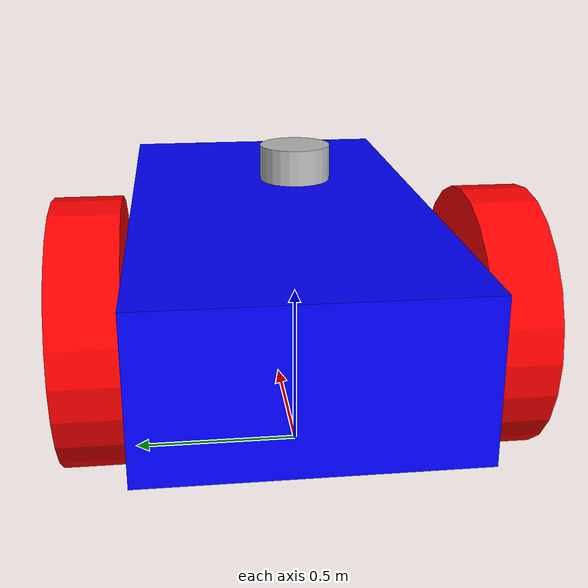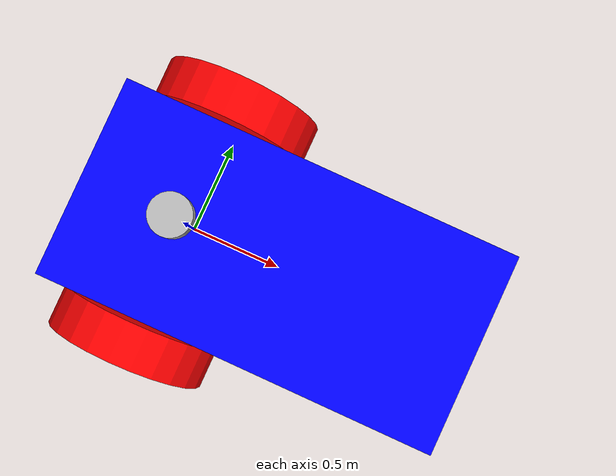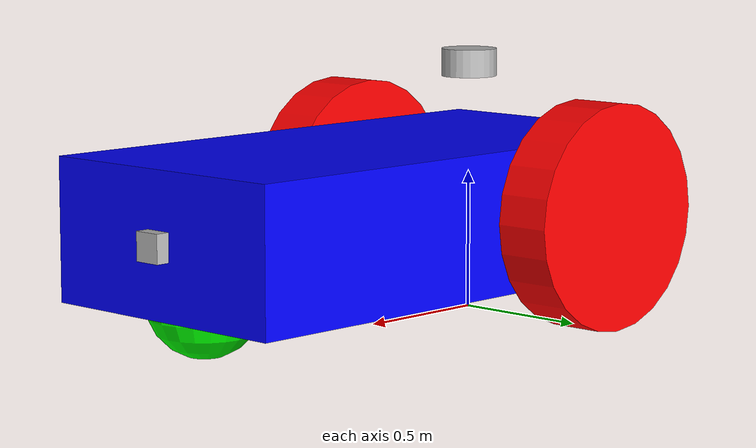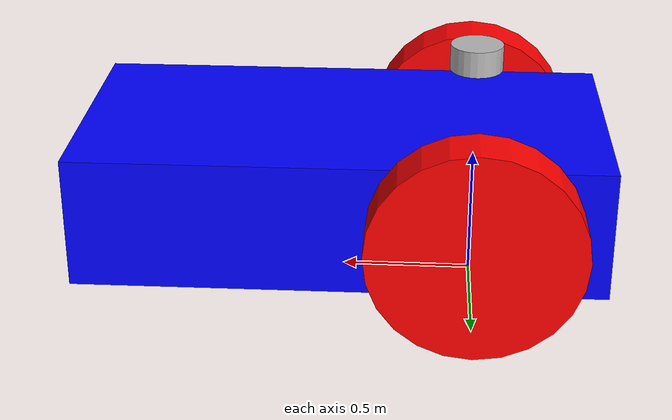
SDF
<sdf version="1.8">
    <model name='vehicle_blue'>
        <canonical_link>chassis</canonical_link>
        <plugin
            filename="gz-sim-pose-publisher-system"
            name="gz::sim::systems::PosePublisher">
            <use_pose_vector_msg>true</use_pose_vector_msg>
            <publish_nested_model_pose>true</publish_nested_model_pose>
        </plugin>

        <link name='chassis'>
            <pose relative_to='__model__'>0.5 0 0.4 0 0 0</pose>
            <inertial> <!--inertial properties of the link mass, inertia matix-->
                <mass>10.14395</mass>
                <inertia>
                    <ixx>0.126164</ixx>
                    <ixy>0</ixy>
                    <ixz>0</ixz>
                    <iyy>0.416519</iyy>
                    <iyz>0</iyz>
                    <izz>0.481014</izz>
                </inertia>
            </inertial>
            <visual name='visual'>
                <geometry>
                    <box>
                        <size>2.0 1.0 0.5</size> <!--question: this size is in meter-->
                    </box>
                </geometry>
                <!--let's add color to our link-->
                <material>
                    <ambient>0.0 0.0 1.0 1</ambient>
                    <diffuse>0.0 0.0 1.0 1</diffuse>
                    <specular>0.0 0.0 1.0 1</specular>
                </material>
            </visual>
            <collision name='collision'> <!--todo: describe why we need the collision-->
                <geometry>
                    <box>
                        <size>2.0 1.0 0.5</size>
                    </box>
                </geometry>
            </collision>
        </link>

        <!-- Attach a camera to the nose of the bot -->
        <link name="camera">
            <pose relative_to="chassis">1.0 0 0 0 0 0</pose>
            <inertial>
              <mass>0.1</mass>
              <inertia>
                <ixx>0.000166667</ixx>
                <iyy>0.000166667</iyy>
                <izz>0.000166667</izz>
              </inertia>
            </inertial>
            <collision name="collision">
              <geometry>
                <box>
                  <size>0.1 0.1 0.1</size>
                </box>
              </geometry>
            </collision>
            <visual name="visual">
              <geometry>
                <box>
                  <size>0.1 0.1 0.1</size>
                </box>
              </geometry>
            </visual>
            <sensor name="camera" type="camera">
              <camera>
                <horizontal_fov>1.047</horizontal_fov>
                <image>
                  <width>1280</width>
                  <height>720</height>
                </image>
                <clip>
                  <near>0.1</near>
                  <far>100</far>
                </clip>
              </camera>
              <always_on>1</always_on>
              <update_rate>30</update_rate>
              <visualize>true</visualize>
              <topic>camera</topic>
              <cameraInfoTopicName>camera_info</cameraInfoTopicName>
            </sensor>
          </link>

        <joint name="camera_joint" type="fixed">
            <parent>chassis</parent>
            <child>camera</child>
        </joint>

        <!-- Lidar Sensor -->
        <link name="lidar">
            <pose relative_to="chassis">-0.5 0 0.5 0 0 0</pose>
            <collision name="collision">
                <geometry>
                    <cylinder>
                        <radius>0.1</radius>
                        <length>0.1</length>
                    </cylinder>
                </geometry>
            </collision>
            <visual name="visual">
                <geometry>
                    <cylinder>
                        <radius>0.1</radius>
                        <length>0.1</length>
                    </cylinder>
                </geometry>
            </visual>
            <sensor name='gpu_lidar' type='gpu_lidar'>"
                <pose relative_to='lidar_frame'>0 0 0 0 0 0</pose>
                <topic>lidar</topic>
                <update_rate>10</update_rate>
                <ray>
                    <scan>
                        <horizontal>
                            <samples>7200</samples>
                            <resolution>1</resolution>
                            <min_angle>0</min_angle>
                            <max_angle>6.2832</max_angle>
                        </horizontal>
                        <vertical>
                            <samples>1</samples>
                            <resolution>0.01</resolution>
                            <min_angle>0</min_angle>
                            <max_angle>0</max_angle>
                        </vertical>
                    </scan>
                    <range>
                        <min>0.08</min>
                        <max>10.0</max>
                        <resolution>0.01</resolution>
                    </range>
                    <noise>
                        <type>gaussian</type>
                        <mean>0.0</mean>
                        <stddev>0.01</stddev>
                    </noise>
                </ray>
                <always_on>1</always_on>
                <visualize>true</visualize>
            </sensor>
        </link>

        <joint name="lidar_joint" type="fixed">
            <parent>chassis</parent>
            <child>lidar</child>
        </joint>

        <link name="imu_link">
            <pose relative_to="chassis">-0.5 0 0 0 0 0</pose>
            <sensor name='imu_sensor' type='imu'>"
                <pose relative_to='imu_frame'>0 0 0 0 0 0</pose>
                  <update_rate>100</update_rate>
                  <topic>imu</topic>
                  <imu>
                    <angular_velocity>
                      <noise type="gaussian">
                        <mean>0.0</mean>
                        <stddev>0.01</stddev>
                      </noise>
                    </angular_velocity>
                    <linear_acceleration>
                      <noise type="gaussian">
                        <mean>0.0</mean>
                        <stddev>0.1</stddev>
                      </noise>
                    </linear_acceleration>
                  </imu>
              </sensor>
        </link>

        <joint name="imu_joint" type="fixed">
            <parent>chassis</parent>
            <child>imu_link</child>
        </joint>

        <!--let's build the left wheel-->
        <link name='left_wheel'>
            <pose relative_to="chassis">-0.5 0.6 0 -1.5707 0 0</pose> <!--angles are in radian-->
            <inertial>
                <mass>2</mass>
                <inertia>
                    <ixx>0.145833</ixx>
                    <ixy>0</ixy>
                    <ixz>0</ixz>
                    <iyy>0.145833</iyy>
                    <iyz>0</iyz>
                    <izz>0.125</izz>
                </inertia>
            </inertial>
            <visual name='visual'>
                <geometry>
                    <cylinder>
                        <radius>0.4</radius>
                        <length>0.2</length>
                    </cylinder>
                </geometry>
                <material>
                    <ambient>1.0 0.0 0.0 1</ambient>
                    <diffuse>1.0 0.0 0.0 1</diffuse>
                    <specular>1.0 0.0 0.0 1</specular>
                </material>
            </visual>
            <collision name='collision'>
                <geometry>
                    <cylinder>
                        <radius>0.4</radius>
                        <length>0.2</length>
                    </cylinder>
                </geometry>
                  <surface>
                <friction>
                  <ode>
                    <mu>0.9</mu> <!-- Static friction -->
                    <mu2>0.7</mu2> <!-- Kinetic friction -->
                  </ode>
                </friction>
              </surface>
            </collision>
        </link>

        <!--copy and paste for right wheel but change position-->
        <link name='right_wheel'>
            <pose relative_to="chassis">-0.5 -0.6 0 -1.5707 0 0</pose> <!--angles are in radian-->
            <inertial>
                <mass>1</mass>
                <inertia>
                    <ixx>0.145833</ixx>
                    <ixy>0</ixy>
                    <ixz>0</ixz>
                    <iyy>0.145833</iyy>
                    <iyz>0</iyz>
                    <izz>0.125</izz>
                </inertia>
            </inertial>
            <visual name='visual'>
                <geometry>
                    <cylinder>
                        <radius>0.4</radius>
                        <length>0.2</length>
                    </cylinder>
                </geometry>
                <material>
                    <ambient>1.0 0.0 0.0 1</ambient>
                    <diffuse>1.0 0.0 0.0 1</diffuse>
                    <specular>1.0 0.0 0.0 1</specular>
                </material>
            </visual>
            <collision name='collision'>
                <geometry>
                    <cylinder>
                        <radius>0.4</radius>
                        <length>0.2</length>
                    </cylinder>
                </geometry>
                  <surface>
                <friction>
                  <ode>
                    <mu>0.9</mu> <!-- Static friction -->
                    <mu2>0.7</mu2> <!-- Kinetic friction -->
                  </ode>
                </friction>
              </surface>
            </collision>
        </link>

        <frame name="caster_frame" attached_to='chassis'>
            <pose>0.8 0 -0.2 0 0 0</pose>
        </frame>

        <!--caster wheel-->
        <link name='caster'>
            <pose relative_to='caster_frame'/>
            <inertial>
                <mass>1</mass>
                <inertia>
                    <ixx>0.1</ixx>
                    <ixy>0</ixy>
                    <ixz>0</ixz>
                    <iyy>0.1</iyy>
                    <iyz>0</iyz>
                    <izz>0.1</izz>
                </inertia>
            </inertial>
            <visual name='visual'>
                <geometry>
                    <sphere>
                        <radius>0.2</radius>
                    </sphere>
                </geometry>
                <material>
                    <ambient>0.0 1 0.0 1</ambient>
                    <diffuse>0.0 1 0.0 1</diffuse>
                    <specular>0.0 1 0.0 1</specular>
                </material>
            </visual>
            <collision name='collision'>
                <geometry>
                    <sphere>
                        <radius>0.2</radius>
                    </sphere>
                </geometry>
            </collision>
        </link>

        <!--connecting these links together using joints-->
        <joint name='left_wheel_joint' type='revolute'> <!--continous joint is not supported yet-->
            <pose relative_to='left_wheel'/>
            <parent>chassis</parent>
            <child>left_wheel</child>
            <axis>
                <xyz expressed_in='__model__'>0 1 0</xyz> <!--can be defined as any frame or even arbitrary frames-->
                <limit>
                    <lower>-1.79769e+308</lower>    <!--negative infinity-->
                    <upper>1.79769e+308</upper>     <!--positive infinity-->
                </limit>
            </axis>
        </joint>

        <joint name='right_wheel_joint' type='revolute'>
            <pose relative_to='right_wheel'/>
            <parent>chassis</parent>
            <child>right_wheel</child>
            <axis>
                <xyz expressed_in='__model__'>0 1 0</xyz>
                <limit>
                    <lower>-1.79769e+308</lower>    <!--negative infinity-->
                    <upper>1.79769e+308</upper>     <!--positive infinity-->
                </limit>
            </axis>
        </joint>

        <!--different type of joints ball joint--> <!--defult value is the child-->
        <joint name='caster_wheel' type='ball'>
            <parent>chassis</parent>
            <child>caster</child>
        </joint>

        <!--diff drive plugin-->
        <plugin
            filename="gz-sim-diff-drive-system"
            name="gz::sim::systems::DiffDrive">
            <left_joint>left_wheel_joint</left_joint>
            <right_joint>right_wheel_joint</right_joint>
            <wheel_separation>1.2</wheel_separation>
            <wheel_radius>0.4</wheel_radius>
            <odom_publish_frequency>100</odom_publish_frequency>
            <topic>cmd_vel</topic>
        </plugin>

    </model>
</sdf>
